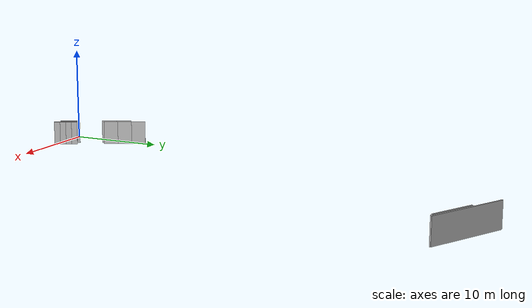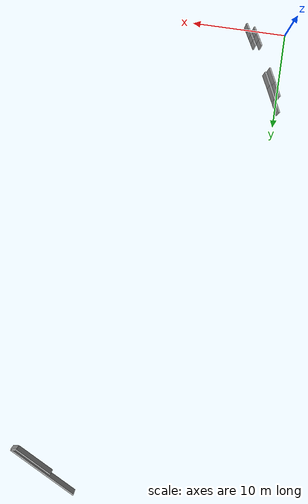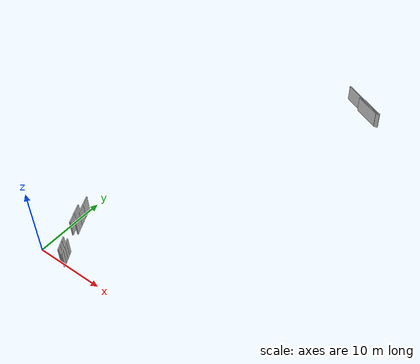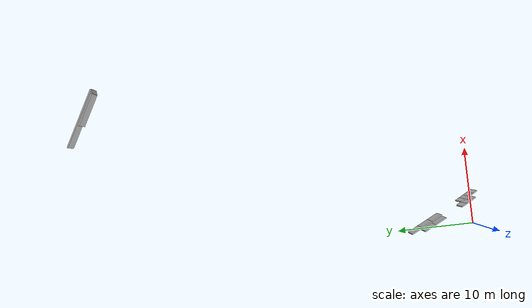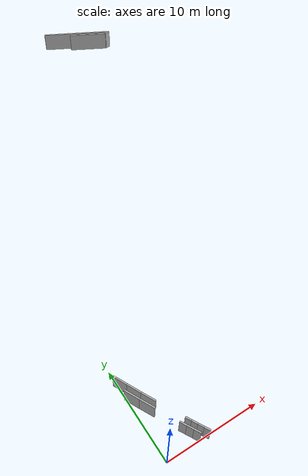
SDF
<?xml version="1.0" ?>
<sdf version="1.6">
  <model name="sps_0202">
    <pose frame="">0 0 0 0 -0 0</pose>
    <static>1</static>
    <self_collide>0</self_collide>
    <allow_auto_disable>0</allow_auto_disable>
    <link name="Wall36">
      <kinematic>0</kinematic>
      <gravity>1</gravity>
      <self_collide>0</self_collide>
      <collision name="collision">
        <geometry>
          <box>
            <size>4.49387 0.15 2.5</size>
          </box>
        </geometry>
        <pose frame="">0 0 0 0 -0 0</pose>
      </collision>
      <visual name="visual">
        <geometry>
          <box>
            <size>4.49387 0.15 2.5</size>
          </box>
        </geometry>
        <pose frame="">0 0 0 0 -0 0</pose>
        <cast_shadows>1</cast_shadows>
        <transparency>0.0</transparency>
      </visual>
      <pose frame="">20.5841 49.0154 1.25 0 0 -0.490231</pose>
    </link>
    <link name="Wall1160">
      <kinematic>0</kinematic>
      <gravity>1</gravity>
      <self_collide>0</self_collide>
      <collision name="collision">
        <geometry>
          <box>
            <size>0.58139 0.15 2.5</size>
          </box>
        </geometry>
        <pose frame="">0 0 0 0 -0 0</pose>
      </collision>
      <visual name="visual">
        <geometry>
          <box>
            <size>0.58139 0.15 2.5</size>
          </box>
        </geometry>
        <pose frame="">0 0 0 0 -0 0</pose>
        <cast_shadows>1</cast_shadows>
        <transparency>0.0</transparency>
      </visual>
      <pose frame="">22.8556 47.9868 1.25 0 -0 0.100954</pose>
    </link>
    <link name="Wall1779">
      <kinematic>0</kinematic>
      <gravity>1</gravity>
      <self_collide>0</self_collide>
      <collision name="collision">
        <geometry>
          <box>
            <size>8.20364 0.15 2.5</size>
          </box>
        </geometry>
        <pose frame="">0 0 0 0 -0 0</pose>
      </collision>
      <visual name="visual">
        <geometry>
          <box>
            <size>8.20364 0.15 2.5</size>
          </box>
        </geometry>
        <pose frame="">0 0 0 0 -0 0</pose>
        <cast_shadows>1</cast_shadows>
        <transparency>0.0</transparency>
      </visual>
      <pose frame="">19.523 49.9414 1.25 0 0 -0.488591</pose>
    </link>
    <link name="Wall8992">
      <kinematic>0</kinematic>
      <gravity>1</gravity>
      <self_collide>0</self_collide>
      <collision name="collision">
        <geometry>
          <box>
            <size>1.5303 0.15 2.5</size>
          </box>
        </geometry>
        <pose frame="">0 0 0 0 -0 0</pose>
      </collision>
      <visual name="visual">
        <geometry>
          <box>
            <size>1.5303 0.15 2.5</size>
          </box>
        </geometry>
        <pose frame="">0 0 0 0 -0 0</pose>
        <cast_shadows>1</cast_shadows>
        <transparency>0.0</transparency>
      </visual>
      <pose frame="">0.0724709 8.01427 1.25 0 0 -1.11848</pose>
    </link>
    <link name="Wall8993">
      <kinematic>0</kinematic>
      <gravity>1</gravity>
      <self_collide>0</self_collide>
      <collision name="collision">
        <geometry>
          <box>
            <size>1.53023 0.15 2.5</size>
          </box>
        </geometry>
        <pose frame="">0 0 0 0 -0 0</pose>
      </collision>
      <visual name="visual">
        <geometry>
          <box>
            <size>1.53023 0.15 2.5</size>
          </box>
        </geometry>
        <pose frame="">0 0 0 0 -0 0</pose>
        <cast_shadows>1</cast_shadows>
        <transparency>0.0</transparency>
      </visual>
      <pose frame="">0.748771 6.64159 1.25 0 0 -1.10756</pose>
    </link>
    <link name="Wall8994">
      <kinematic>0</kinematic>
      <gravity>1</gravity>
      <self_collide>0</self_collide>
      <collision name="collision">
        <geometry>
          <box>
            <size>1.53031 0.15 2.5</size>
          </box>
        </geometry>
        <pose frame="">0 0 0 0 -0 0</pose>
      </collision>
      <visual name="visual">
        <geometry>
          <box>
            <size>1.53031 0.15 2.5</size>
          </box>
        </geometry>
        <pose frame="">0 0 0 0 -0 0</pose>
        <cast_shadows>1</cast_shadows>
        <transparency>0.0</transparency>
      </visual>
      <pose frame="">1.43987 5.27629 1.25 0 0 -1.09686</pose>
    </link>
    <link name="Wall12742">
      <kinematic>0</kinematic>
      <gravity>1</gravity>
      <self_collide>0</self_collide>
      <collision name="collision">
        <geometry>
          <box>
            <size>0.712346 0.15 2.5</size>
          </box>
        </geometry>
        <pose frame="">0 0 0 0 -0 0</pose>
      </collision>
      <visual name="visual">
        <geometry>
          <box>
            <size>0.712346 0.15 2.5</size>
          </box>
        </geometry>
        <pose frame="">0 0 0 0 -0 0</pose>
        <cast_shadows>1</cast_shadows>
        <transparency>0.0</transparency>
      </visual>
      <pose frame="">2.72436 1.5735 1.25 0 0 -1.06966</pose>
    </link>
    <link name="Wall12743">
      <kinematic>0</kinematic>
      <gravity>1</gravity>
      <self_collide>0</self_collide>
      <collision name="collision">
        <geometry>
          <box>
            <size>0.712381 0.15 2.5</size>
          </box>
        </geometry>
        <pose frame="">0 0 0 0 -0 0</pose>
      </collision>
      <visual name="visual">
        <geometry>
          <box>
            <size>0.712381 0.15 2.5</size>
          </box>
        </geometry>
        <pose frame="">0 0 0 0 -0 0</pose>
        <cast_shadows>1</cast_shadows>
        <transparency>0.0</transparency>
      </visual>
      <pose frame="">3.06817 0.949599 1.25 0 0 -1.0646</pose>
    </link>
    <link name="Wall12744">
      <kinematic>0</kinematic>
      <gravity>1</gravity>
      <self_collide>0</self_collide>
      <collision name="collision">
        <geometry>
          <box>
            <size>0.712488 0.15 2.5</size>
          </box>
        </geometry>
        <pose frame="">0 0 0 0 -0 0</pose>
      </collision>
      <visual name="visual">
        <geometry>
          <box>
            <size>0.712488 0.15 2.5</size>
          </box>
        </geometry>
        <pose frame="">0 0 0 0 -0 0</pose>
        <cast_shadows>1</cast_shadows>
        <transparency>0.0</transparency>
      </visual>
      <pose frame="">3.41515 0.327376 1.25 0 0 -1.05959</pose>
    </link>
    <link name="Wall18891">
      <kinematic>0</kinematic>
      <gravity>1</gravity>
      <self_collide>0</self_collide>
      <collision name="collision">
        <geometry>
          <box>
            <size>1.62148 0.15 2.5</size>
          </box>
        </geometry>
        <pose frame="">0 0 0 0 -0 0</pose>
      </collision>
      <visual name="visual">
        <geometry>
          <box>
            <size>1.62148 0.15 2.5</size>
          </box>
        </geometry>
        <pose frame="">0 0 0 0 -0 0</pose>
        <cast_shadows>1</cast_shadows>
        <transparency>0.0</transparency>
      </visual>
      <pose frame="">0.270164 6.25709 1.25 0 0 -1.10668</pose>
    </link>
    <link name="Wall18892">
      <kinematic>0</kinematic>
      <gravity>1</gravity>
      <self_collide>0</self_collide>
      <collision name="collision">
        <geometry>
          <box>
            <size>1.62148 0.15 2.5</size>
          </box>
        </geometry>
        <pose frame="">0 0 0 0 -0 0</pose>
      </collision>
      <visual name="visual">
        <geometry>
          <box>
            <size>1.62148 0.15 2.5</size>
          </box>
        </geometry>
        <pose frame="">0 0 0 0 -0 0</pose>
        <cast_shadows>1</cast_shadows>
        <transparency>0.0</transparency>
      </visual>
      <pose frame="">1.00417 4.81129 1.25 0 0 -1.09536</pose>
    </link>
    <link name="Wall18932">
      <kinematic>0</kinematic>
      <gravity>1</gravity>
      <self_collide>0</self_collide>
      <collision name="collision">
        <geometry>
          <box>
            <size>0.630352 0.15 2.5</size>
          </box>
        </geometry>
        <pose frame="">0 0 0 0 -0 0</pose>
      </collision>
      <visual name="visual">
        <geometry>
          <box>
            <size>0.630352 0.15 2.5</size>
          </box>
        </geometry>
        <pose frame="">0 0 0 0 -0 0</pose>
        <cast_shadows>1</cast_shadows>
        <transparency>0.0</transparency>
      </visual>
      <pose frame="">3.35488 1.67229 1.25 0 0 -1.0683</pose>
    </link>
    <link name="Wall18933">
      <kinematic>0</kinematic>
      <gravity>1</gravity>
      <self_collide>0</self_collide>
      <collision name="collision">
        <geometry>
          <box>
            <size>0.63031 0.15 2.5</size>
          </box>
        </geometry>
        <pose frame="">0 0 0 0 -0 0</pose>
      </collision>
      <visual name="visual">
        <geometry>
          <box>
            <size>0.63031 0.15 2.5</size>
          </box>
        </geometry>
        <pose frame="">0 0 0 0 -0 0</pose>
        <cast_shadows>1</cast_shadows>
        <transparency>0.0</transparency>
      </visual>
      <pose frame="">3.65975 1.12059 1.25 0 0 -1.06361</pose>
    </link>
    <link name="Wall18934">
      <kinematic>0</kinematic>
      <gravity>1</gravity>
      <self_collide>0</self_collide>
      <collision name="collision">
        <geometry>
          <box>
            <size>0.630358 0.15 2.5</size>
          </box>
        </geometry>
        <pose frame="">0 0 0 0 -0 0</pose>
      </collision>
      <visual name="visual">
        <geometry>
          <box>
            <size>0.630358 0.15 2.5</size>
          </box>
        </geometry>
        <pose frame="">0 0 0 0 -0 0</pose>
        <cast_shadows>1</cast_shadows>
        <transparency>0.0</transparency>
      </visual>
      <pose frame="">3.96715 0.570296 1.25 0 0 -1.05911</pose>
    </link>
    <link name="Wall18935">
      <kinematic>0</kinematic>
      <gravity>1</gravity>
      <self_collide>0</self_collide>
      <collision name="collision">
        <geometry>
          <box>
            <size>0.630525 0.15 2.5</size>
          </box>
        </geometry>
        <pose frame="">0 0 0 0 -0 0</pose>
      </collision>
      <visual name="visual">
        <geometry>
          <box>
            <size>0.630525 0.15 2.5</size>
          </box>
        </geometry>
        <pose frame="">0 0 0 0 -0 0</pose>
        <cast_shadows>1</cast_shadows>
        <transparency>0.0</transparency>
      </visual>
      <pose frame="">4.27706 0.021285 1.25 0 0 -1.0547</pose>
    </link>
  </model>
</sdf>
